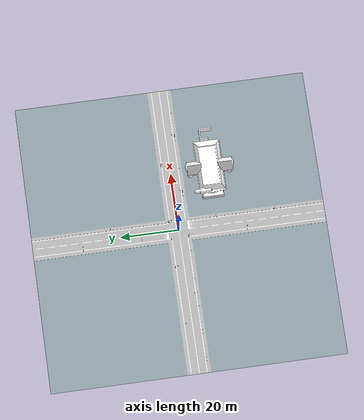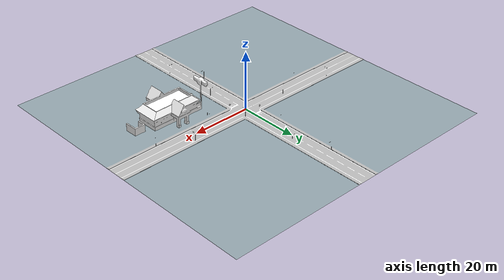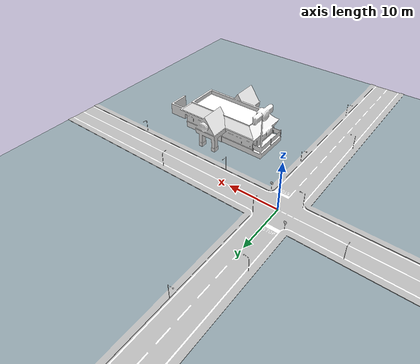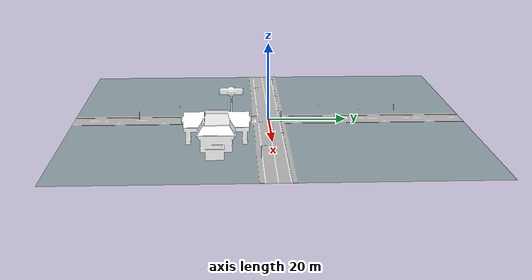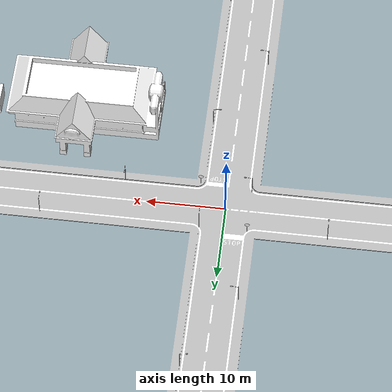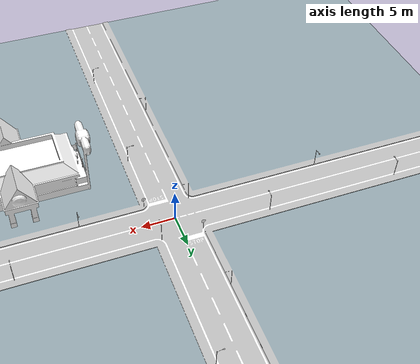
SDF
<sdf version="1.5">
 <world name="default">
  <scene><grid>false</grid></scene>
  <include><uri>model://sun</uri><pose>1.5 -30 100 0 0 0</pose></include>
  <include>
   <name>stop_sign_0</name>
   <static>true</static>
   <uri>model://stop_sign</uri>
   <pose>3.5 -3.5 0 0 0 0</pose>
  </include>
  <include>
   <name>stop_sign_1</name>
   <static>true</static>
   <uri>model://stop_sign</uri>
   <pose>-3 3 0 0 0 3.15</pose>
  </include>
  <include><uri>model://fast_food</uri><pose>19.869 -13.2122 0 0 0 3.14159</pose></include>
  <include><name>lamp_post_0</name><uri>model://lamp_post</uri><pose>-3 13 0 0 0 1.55</pose></include>
  <include><name>lamp_post_1</name><uri>model://lamp_post</uri><pose>3 23 0 0 0 -1.55</pose></include>
  <include><name>lamp_post_2</name><uri>model://lamp_post</uri><pose>-3 33 0 0 0 1.55</pose></include>
  <include><name>lamp_post_3</name><uri>model://lamp_post</uri><pose>-3 -3 0 0 0 1.55</pose></include>
  <include><name>lamp_post_4</name><uri>model://lamp_post</uri><pose>3 -13 0 0 0 -1.55</pose></include>
  <include><name>lamp_post_5</name><uri>model://lamp_post</uri><pose>-3 -23 0 0 0 1.55</pose></include>
  <include><name>lamp_post_6</name><uri>model://lamp_post</uri><pose>3 -33 0 0 0 -1.55</pose></include>
  <include><name>lamp_post_7</name><uri>model://lamp_post</uri><pose>3 3 0 0 0 0</pose></include>
  <include><name>lamp_post_8</name><uri>model://lamp_post</uri><pose>13 -3 0 0 0 3.15</pose></include>
  <include><name>lamp_post_9</name><uri>model://lamp_post</uri><pose>23 3 0 0 0 0</pose></include>
  <include><name>lamp_post_10</name><uri>model://lamp_post</uri><pose>33 -3 0 0 0 3.15</pose></include>
  <include><name>lamp_post_11</name><uri>model://lamp_post</uri><pose>-13 3 0 0 0 0</pose></include>
  <include><name>lamp_post_12</name><uri>model://lamp_post</uri><pose>-23 -3 0 0 0 3.15</pose></include>
  <include><name>lamp_post_13</name><uri>model://lamp_post</uri><pose>-33 3 0 0 0 0</pose></include>
  <include><uri>model://stopW</uri></include>
 </world>
</sdf>

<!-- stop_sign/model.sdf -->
<sdf version="1.5">
  <model name="Stop Sign">
    <link name="link">
      <collision name="collision">
        <geometry>
          <mesh>
            <uri>model://stop_sign/meshes/stop_sign.dae</uri>
          </mesh>
        </geometry>
      </collision>
      <visual name="visual">
        <geometry>
          <mesh>
            <uri>model://stop_sign/meshes/stop_sign.dae</uri>
          </mesh>
        </geometry>
        <material>
          <script>
            <uri>model://stop_sign/materials/scripts</uri>
            <uri>model://stop_sign/materials/textures</uri>
            <name>StopSign/Diffuse</name>
          </script>
        </material>
      </visual>
    </link>
  </model>
</sdf>

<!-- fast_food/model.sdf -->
<sdf version="1.5">
  <model name="Fast Food">
    <static>true</static>
    <link name="link">
      <pose>0 0 3.15931296 0 0 0</pose>
      <collision name="collision">
        <geometry>
          <mesh>
            <scale>3 3 2</scale>
            <uri>model://fast_food/meshes/fast_food.dae</uri>
          </mesh>
        </geometry>
      </collision>
      <visual name="visual">
        <geometry>
          <mesh>
            <scale>3 3 2</scale>
            <uri>model://fast_food/meshes/fast_food.dae</uri>
          </mesh>
        </geometry>
        <material>
          <script>
            <uri>model://fast_food/materials/scripts</uri>
            <uri>model://fast_food/materials/textures</uri>
            <name>FastFood/Diffuse</name>
          </script>
          <shader type="normal_map_tangent_space">
            <normal_map>FastFood_Normal.png</normal_map>
          </shader>
        </material>
      </visual>
    </link>
  </model>
</sdf>

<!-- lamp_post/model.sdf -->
<sdf version="1.5">
  <model name="Lamp Post">
    <static>true</static>
    <link name="link">
      <collision name="collision">
        <geometry>
          <mesh>
            <uri>model://lamp_post/meshes/lamp_post.dae</uri>
        </mesh>
      </geometry>
    </collision>
      <visual name="visual">
        <geometry>
          <mesh>
            <uri>model://lamp_post/meshes/lamp_post.dae</uri>
        </mesh>
      </geometry>
    </visual>
  </link>
</model>
</sdf>

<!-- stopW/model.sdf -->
<sdf version="1.5">
  <model name="stop">
    <static>true</static>
    <link name="link">
      <collision name="collision">
        <geometry>
          <plane>
            <normal>0 0 1</normal>
            <size>100 100</size>
          </plane>
        </geometry>
      </collision>
      <visual name="visual">
        <geometry>
          <mesh>
	    <uri>model://stopW/meshes/stop.dae</uri>
          </mesh>
        </geometry>
      </visual>
    </link>
  </model>
</sdf>
